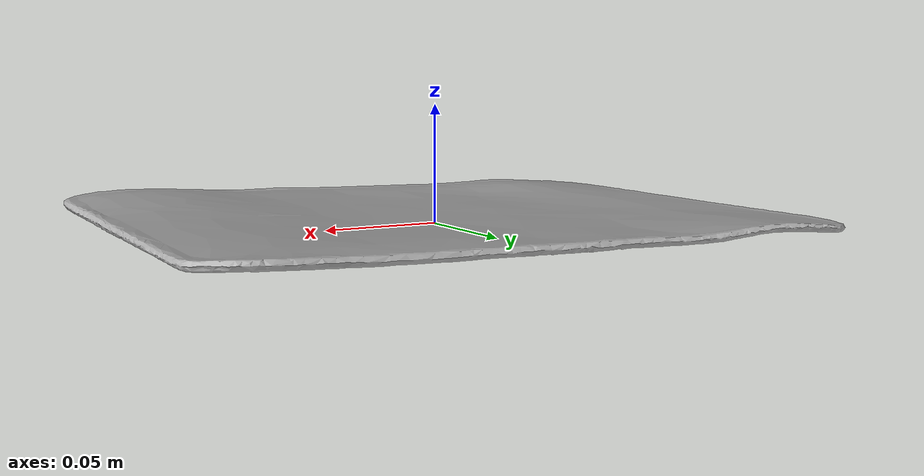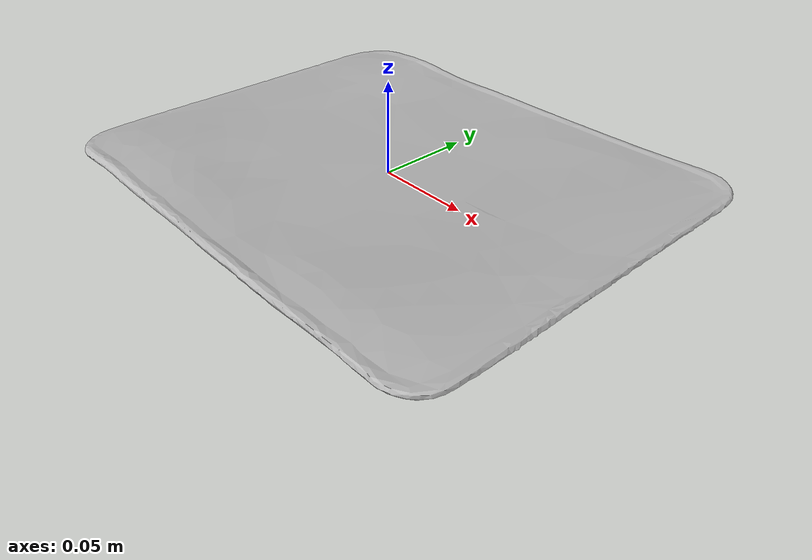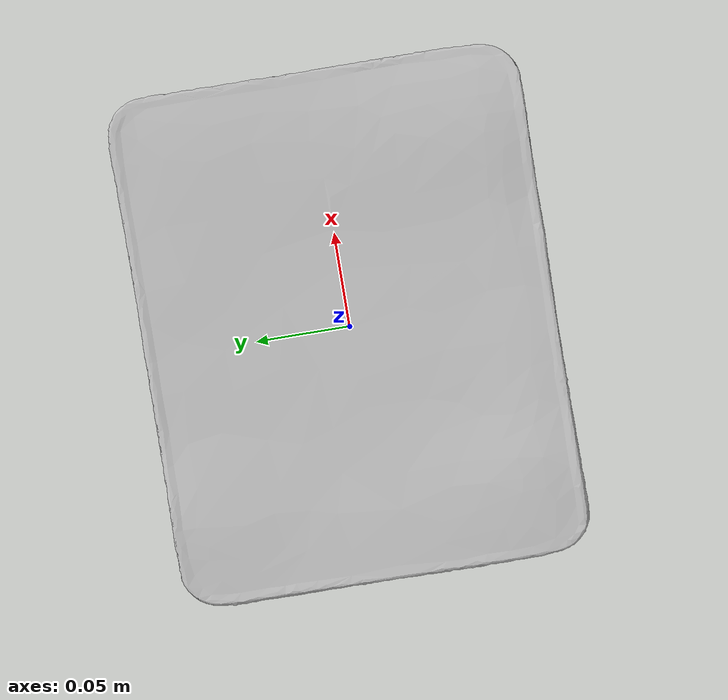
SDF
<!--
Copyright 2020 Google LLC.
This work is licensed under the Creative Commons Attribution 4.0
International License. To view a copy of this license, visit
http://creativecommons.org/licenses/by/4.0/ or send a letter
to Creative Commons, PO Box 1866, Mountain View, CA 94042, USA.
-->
<?xml version="1.0" ?>
<sdf version="1.6">
  <model name="Razer_Goliathus_Control_Edition_Small_Soft_Gaming_Mouse_Mat">
    <link name="link_0">
      <visual name="visual">
        <geometry>
          <mesh>
            <uri>meshes/model.obj</uri>
          </mesh>
        </geometry>
      </visual>
      <collision name="collision_0">
        <geometry>
          <mesh>
            <uri>meshes/model.obj</uri>
          </mesh>
        </geometry>
      </collision>
    </link>
  </model>
</sdf>
